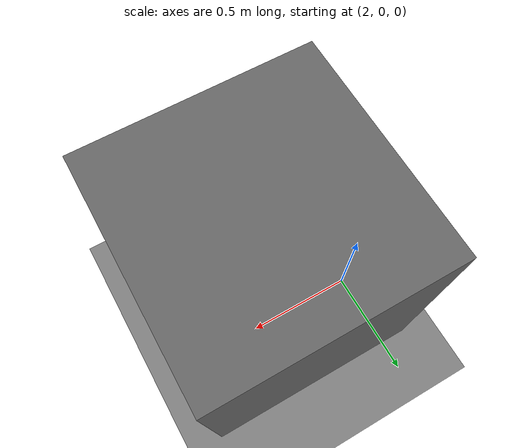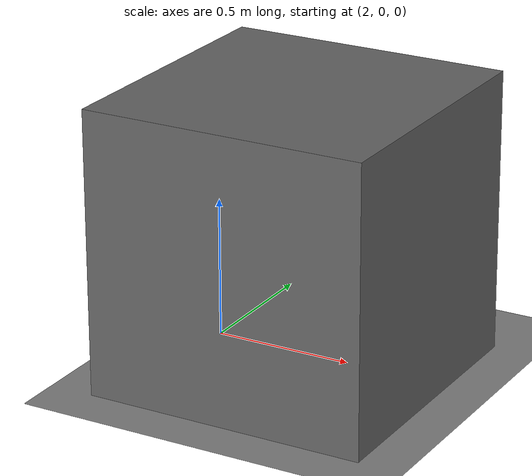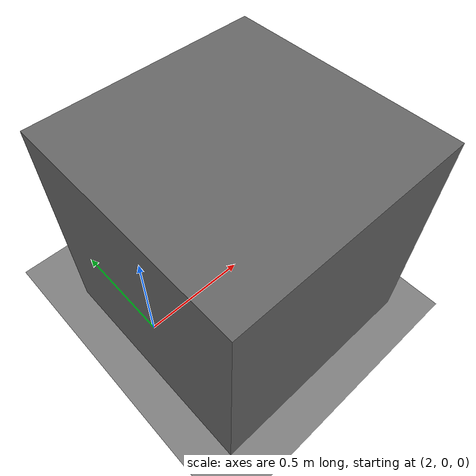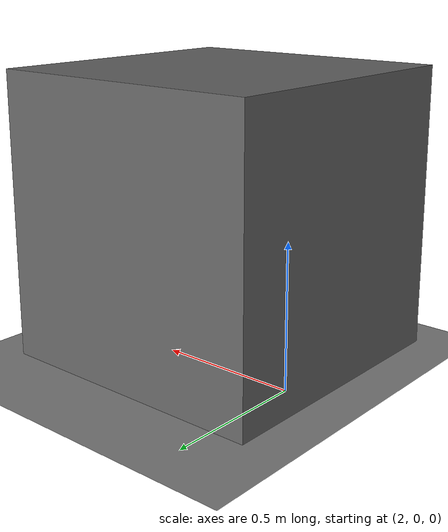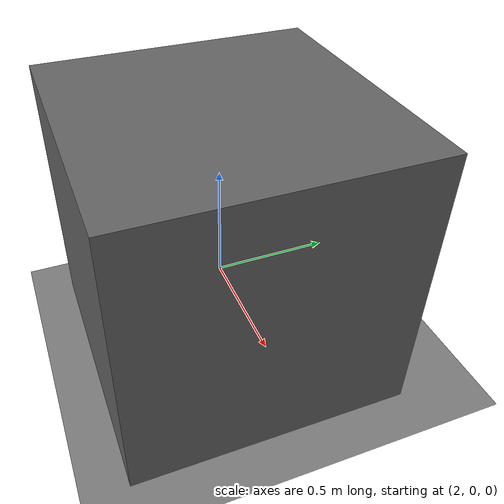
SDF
<sdf version="1.7">
  <world name="default">
    <light name="sun" type="directional">
      <cast_shadows>1</cast_shadows>
      <pose>0 0 10 0 0 0</pose>
      <diffuse>0.8 0.8 0.8 1</diffuse>
      <specular>0.1 0.1 0.1 1</specular>
      <attenuation>
        <range>1000</range>
        <constant>0.9</constant>
        <linear>0.01</linear>
        <quadratic>0.001</quadratic>
      </attenuation>
      <direction>-0.5 0.5 -1</direction>
    </light>

    <model name="ground_plane">
      <static>1</static>
      <link name="link">
        <collision name="collision">
          <geometry>
            <plane>
              <normal>0 0 1</normal>
              <size>100 100</size>
            </plane>
          </geometry>
          <surface>
            <friction>
              <ode>
                <mu>100</mu>
                <mu2>50</mu2>
              </ode>
              <torsional>
                <ode/>
              </torsional>
            </friction>
            <contact>
              <ode/>
            </contact>
            <bounce/>
          </surface>
          <max_contacts>10</max_contacts>
        </collision>

        <visual name="visual">
          <geometry>
            <plane>
              <normal>0 0 1</normal>
              <size>100 100</size>
            </plane>
          </geometry>
          <material>
            <ambient>0.5 0.5 0.5 1</ambient>
            <diffuse>0.5 0.5 0.5 1</diffuse>
          </material>
        </visual>

        <self_collide>0</self_collide>
        <kinematic>0</kinematic>
        <gravity>1</gravity>
      </link>
    </model>

    <model name="unit_box_0_0">
      <pose>2.38174 -0.137482 0.5 0 0 0</pose>
      <link name="link">
        <inertial>
          <mass>1</mass>
          <inertia>
            <ixx>0.166667</ixx>
            <ixy>0</ixy>
            <ixz>0</ixz>
            <iyy>0.166667</iyy>
            <iyz>0</iyz>
            <izz>0.166667</izz>
          </inertia>
        </inertial>

        <collision name="collision">
          <geometry>
            <box>
              <size>1 1 1</size>
            </box>
          </geometry>
          <surface>
            <contact><ode/></contact>
            <friction>
              <ode/>
              <torsional><ode/></torsional>
            </friction>
            <bounce/>
          </surface>
          <max_contacts>10</max_contacts>
        </collision>

        <visual name="visual">
          <geometry>
            <box>
              <size>1 1 1</size>
            </box>
          </geometry>
          <material>
            <ambient>0.4 0.4 0.4 1</ambient>
            <diffuse>0.4 0.4 0.4 1</diffuse>
          </material>
        </visual>

        <self_collide>0</self_collide>
        <kinematic>0</kinematic>
        <gravity>1</gravity>
      </link>
    </model>

    <gravity>0 0 -9.8</gravity>
    <magnetic_field>6e-06 2.3e-05 -4.2e-05</magnetic_field>
    <atmosphere type="adiabatic"/>

    <physics name="default_physics" default="1" type="ode">
      <max_step_size>0.001</max_step_size>
      <real_time_factor>1</real_time_factor>
      <real_time_update_rate>1000</real_time_update_rate>
    </physics>

    <scene>
      <ambient>0.4 0.4 0.4 1</ambient>
      <background>0.7 0.7 0.7 1</background>
      <shadows>1</shadows>
    </scene>

    <spherical_coordinates>
      <surface_model>EARTH_WGS84</surface_model>
      <latitude_deg>0</latitude_deg>
      <longitude_deg>0</longitude_deg>
      <elevation>0</elevation>
      <heading_deg>0</heading_deg>
    </spherical_coordinates>
  </world>
</sdf>
